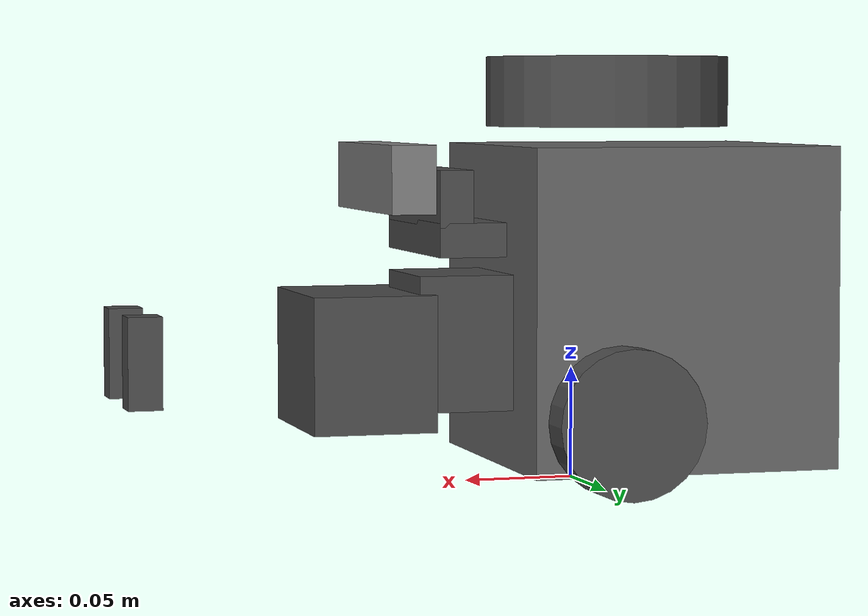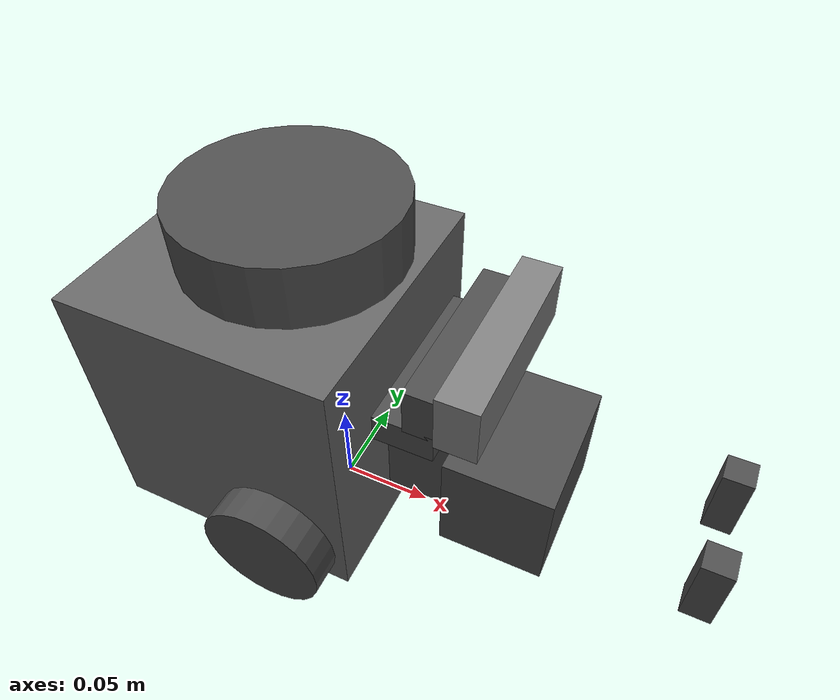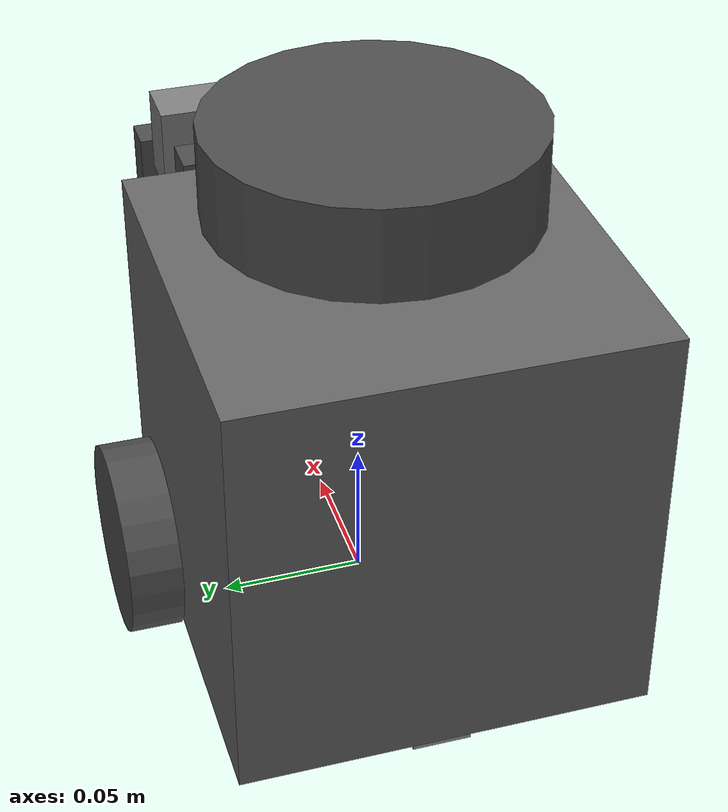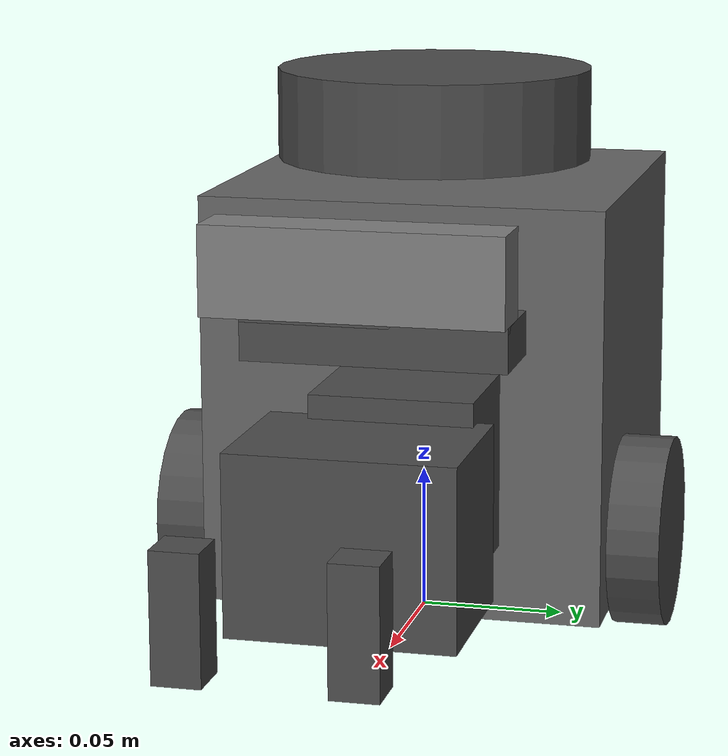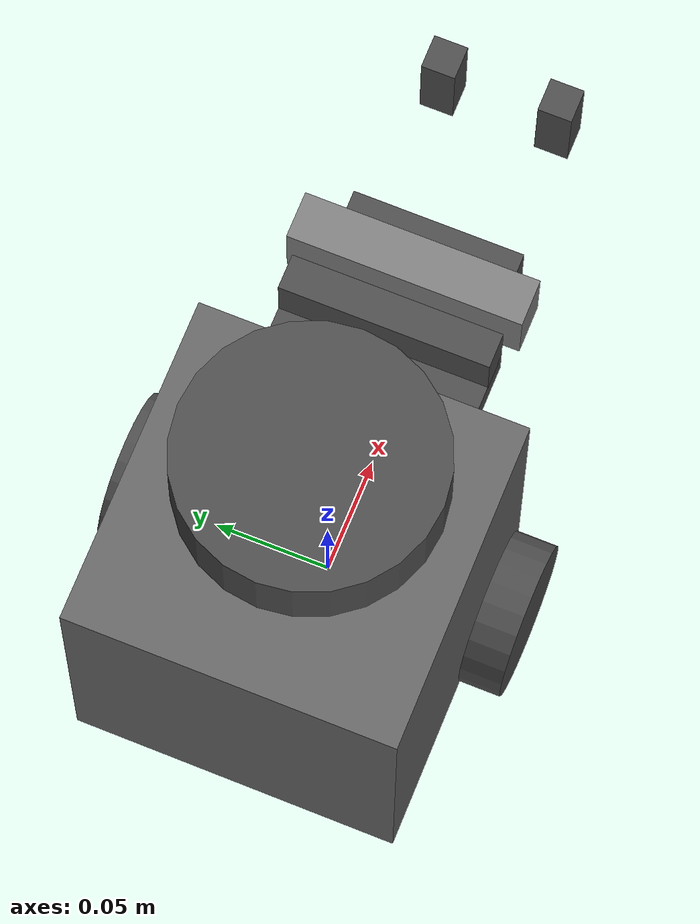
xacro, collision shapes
<?xml version="1.0"?>
<robot name="turtlebot3_burger_gripper" xmlns:xacro="http://www.ros.org/wiki/xacro">
  <xacro:arg name="controllers_file" default=""/>
  <!-- Init colour -->
  <material name="black">
    <color rgba="0.0 0.0 0.0 1.0"/>
  </material>
  <material name="dark">
    <color rgba="0.3 0.3 0.3 1.0"/>
  </material>
  <material name="light_black">
    <color rgba="0.4 0.4 0.4 1.0"/>
  </material>
  <material name="blue">
    <color rgba="0.0 0.0 0.8 1.0"/>
  </material>
  <material name="green">
    <color rgba="0.0 0.8 0.0 1.0"/>
  </material>
  <material name="grey">
    <color rgba="0.5 0.5 0.5 1.0"/>
  </material>
  <material name="orange">
    <color rgba="1.0 0.4235 0.0392 1.0"/>
  </material>
  <material name="brown">
    <color rgba="0.8706 0.8118 0.7647 1.0"/>
  </material>
  <material name="red">
    <color rgba="0.8 0.0 0.0 1.0"/>
  </material>
  <material name="white">
    <color rgba="1.0 1.0 1.0 1.0"/>
  </material>
  <link name="base_footprint"/>
  <joint name="base_joint" type="fixed">
    <parent link="base_footprint"/>
    <child link="base_link"/>
    <origin rpy="0 0 0" xyz="0.0 0.0 0.010"/>
  </joint>
  <link name="base_link">
    <visual>
      <origin rpy="0 0 0" xyz="-0.032 0 0.0"/>
      <geometry>
        <mesh filename="package://tb3_autonomy/meshes/bases/burger_base.stl" scale="0.001 0.001 0.001"/>
      </geometry>
      <material name="light_black"/>
    </visual>
    <collision>
      <origin rpy="0 0 0" xyz="-0.032 0 0.070"/>
      <geometry>
        <box size="0.140 0.140 0.143"/>
      </geometry>
    </collision>
    <inertial>
      <origin rpy="0 0 0" xyz="-0.033 0 0.07"/>
      <mass value="8.2573504e-01"/>
      <inertia ixx="2.2124416e-03" ixy="0.0" ixz="0.0" iyy="2.1193702e-03" iyz="0.0" izz="2.0064271e-03"/>
    </inertial>
  </link>
  <joint name="wheel_left_joint" type="continuous">
    <parent link="base_link"/>
    <child link="wheel_left_link"/>
    <origin rpy="-1.57 0 0" xyz="0.0 0.08 0.023"/>
    <axis xyz="0 0 1"/>
  </joint>
  <link name="wheel_left_link">
    <visual>
      <origin rpy="1.57 0 0" xyz="0 0 0"/>
      <geometry>
        <mesh filename="package://tb3_autonomy/meshes/wheels/left_tire.stl" scale="0.001 0.001 0.001"/>
      </geometry>
      <material name="dark"/>
    </visual>
    <collision>
      <origin rpy="0 0 0" xyz="0 0 0"/>
      <geometry>
        <cylinder length="0.018" radius="0.033"/>
      </geometry>
    </collision>
    <inertial>
      <origin xyz="0 0 0"/>
      <mass value="2.8498940e-02"/>
      <inertia ixx="1.1175580e-05" ixy="0.0" ixz="0.0" iyy="1.1192413e-05" iyz="0.0" izz="2.0712558e-05"/>
    </inertial>
  </link>
  <joint name="wheel_right_joint" type="continuous">
    <parent link="base_link"/>
    <child link="wheel_right_link"/>
    <origin rpy="-1.57 0 0" xyz="0.0 -0.080 0.023"/>
    <axis xyz="0 0 1"/>
  </joint>
  <link name="wheel_right_link">
    <visual>
      <origin rpy="1.57 0 0" xyz="0 0 0"/>
      <geometry>
        <mesh filename="package://tb3_autonomy/meshes/wheels/right_tire.stl" scale="0.001 0.001 0.001"/>
      </geometry>
      <material name="dark"/>
    </visual>
    <collision>
      <origin rpy="0 0 0" xyz="0 0 0"/>
      <geometry>
        <cylinder length="0.018" radius="0.033"/>
      </geometry>
    </collision>
    <inertial>
      <origin xyz="0 0 0"/>
      <mass value="2.8498940e-02"/>
      <inertia ixx="1.1175580e-05" ixy="0.0" ixz="0.0" iyy="1.1192413e-05" iyz="0.0" izz="2.0712558e-05"/>
    </inertial>
  </link>
  <joint name="caster_back_joint" type="fixed">
    <parent link="base_link"/>
    <child link="caster_back_link"/>
    <origin rpy="-1.57 0 0" xyz="-0.081 0 -0.004"/>
  </joint>
  <link name="caster_back_link">
    <collision>
      <origin rpy="0 0 0" xyz="0 0.001 0"/>
      <geometry>
        <box size="0.030 0.009 0.020"/>
      </geometry>
    </collision>
    <inertial>
      <origin xyz="0 0 0"/>
      <mass value="0.005"/>
      <inertia ixx="1.0e-07" ixy="0.0" ixz="0.0" iyy="1.0e-07" iyz="0.0" izz="1.0e-07"/>
    </inertial>
  </link>

  <joint name="support_cameras_a_joint" type="fixed">
    <parent link="base_link"/>
    <child link="support_cameras_a_link"/>
    <origin rpy="0 0 0" xyz="0.023 0 0.101"/>
  </joint>
  <link name="support_cameras_a_link">
    <visual>
      <origin rpy="0 0 1.57" xyz="0 0 0"/>
      <geometry>
        <mesh filename="package://tb3_autonomy/meshes/sensors/support_cameras_part_a.stl" scale="0.001 0.001 0.001"/>
      </geometry>
      <material name="dark"/>
    </visual>
    <collision>
      <origin rpy="0 0 1.57" xyz="0.036 0.0 0"/>
      <geometry>
        <box size="0.09 0.03 0.015"/>
      </geometry>
    </collision>
  </link>

  <joint name="support_cameras_b_joint" type="fixed">
    <parent link="support_cameras_a_link"/>
    <child link="support_cameras_b_link"/>
    <origin rpy="0 -1.57 0" xyz="0.0435 0 0"/>
  </joint>
  <link name="support_cameras_b_link">
    <visual>
      <origin rpy="0 0 -1.57" xyz="0 0 0"/>
      <geometry>
        <mesh filename="package://tb3_autonomy/meshes/sensors/support_cameras_part_b.stl" scale="0.001 0.001 0.001"/>
      </geometry>
      <material name="dark"/>
    </visual>
    <collision>
      <origin rpy="0 0 -1.57" xyz="0.018 0 0"/>
      <geometry>
        <box size="0.09 0.025 0.015"/>
      </geometry>
    </collision>
  </link>

  <joint name="imu_joint" type="fixed">
    <parent link="base_link"/>
    <child link="imu_link"/>
    <origin rpy="0 0 0" xyz="-0.032 0 0.068"/>
  </joint>
  <link name="imu_link"/>
  <joint name="scan_joint" type="fixed">
    <parent link="base_link"/>
    <child link="base_scan"/>
    <origin rpy="0 0 0" xyz="-0.032 0 0.172"/>
  </joint>
  <link name="base_scan">
    <visual>
      <origin rpy="0 0 0" xyz="0 0 0.0"/>
      <geometry>
        <mesh filename="package://tb3_autonomy/meshes/sensors/lds.stl" scale="0.001 0.001 0.001"/>
      </geometry>
      <material name="dark"/>
    </visual>
    <collision>
      <origin rpy="0 0 0" xyz="0.015 0 -0.0065"/>
      <geometry>
        <cylinder length="0.0315" radius="0.055"/>
      </geometry>
    </collision>
    <inertial>
      <mass value="0.114"/>
      <origin xyz="0 0 -0.01"/>
      <inertia ixx="47.43e-06" ixy="0.0" ixz="0.0" iyy="79.51e-06" iyz="0.0" izz="102.75e-06"/>
    </inertial>
  </link>

  <link name="base_gripper">
    <visual>
      <origin rpy="0 0 0" xyz="0 0 0.0"/>
      <geometry>
        <mesh filename="package://tb3_autonomy/meshes/actuators/gripper/gripper_base.stl" scale="0.001 0.001 0.001"/>
      </geometry>
      <material name="dark"/>
    </visual>
    <collision>
      <origin rpy="0 0 0" xyz="-0.005 0.03 -0.025"/>
      <geometry>
        <box size="0.055 0.055 0.06"/>
      </geometry>
    </collision>
    <inertial>
      <origin xyz="0.0 0.02 -0.02"/>
      <mass value="0.07390000"/>
      <inertia ixx="0.00003077518948" ixy="0.0" ixz="0.0" iyy="0.00004864265729" iyz="0.0" izz="0.00004639110157"/>
  </inertial>
  </link>
  <joint name="gripper_base_joint" type="fixed">
    <parent link="base_link"/>
    <child link="base_gripper"/>
    <origin rpy="0 0 -1.57" xyz="0.023 0.0025 0.08"/>
  </joint>

  <link name="tilt_gripper">
    <visual>
      <origin rpy="0 0 0" xyz="0 0 0.0"/>
      <geometry>
        <mesh filename="package://tb3_autonomy/meshes/actuators/gripper/gripper_tilt.stl" scale="0.001 0.001 0.001"/>
      </geometry>
      <material name="dark"/>
    </visual>
    <collision>
      <origin rpy="0 0 0" xyz="0.045 0 0"/>
      <geometry>
        <box size="0.055 0.075 0.06"/>
      </geometry>
    </collision>
    <inertial>
        <origin xyz="0.025 0 0"/>
        <mass value="0.06000000"/>
        <inertia ixx="23.15e-06" ixy="0.0" ixz="0.0" iyy="32.9e-06" iyz="0.0" izz="42.567e-06"/>
    </inertial>
  </link>
  <joint name="gripper_tilt_joint" type="revolute">
      <axis xyz="0 1 0"/>
      <limit effort="1000.0" lower="-0.3" upper="0" velocity="0.5"/>
      <origin rpy="0 0 1.57" xyz="-0.0005 0.0335 -0.033"/>
      <parent link="base_gripper"/>
      <child link="tilt_gripper"/>
  </joint>

  <link name="left_gripper">
    <visual>
      <origin rpy="0 0 0" xyz="0 0 0.0"/>
      <geometry>
        <mesh filename="package://tb3_autonomy/meshes/actuators/gripper/gripper_left.stl" scale="0.001 0.001 0.001"/>
      </geometry>
      <material name="dark"/>
    </visual>

    <collision>
      <origin rpy="0 0 0" xyz="0.095 0.01 -0.015"/>
      <geometry>
        <box size="0.015 0.015 0.04"/> </geometry>
      <surface>
        <friction>
          <ode>
            <mu>1000.0</mu>
            <mu2>1000.0</mu2>
          </ode>
        </friction>
        <contact>
          <ode>
            <kp>1000000.0</kp>
            <kd>1.0</kd>
            <min_depth>0.001</min_depth>
          </ode>
        </contact>
      </surface>
    </collision>

    <inertial>
      <origin xyz="0.045 0 -0.021"/>
      <mass value="0.01"/> <inertia ixx="0.000001" ixy="0.0" ixz="0.0" iyy="0.000001" iyz="0.0" izz="0.000001"/>
    </inertial>
  </link>
  <joint name="gripper_left_joint" type="revolute">
      <axis xyz="0 0 1"/>
      <limit effort="1000.0" lower="0" upper="1.0" velocity="0.5"/>
      <origin rpy="0 0 0" xyz="0.05 0.016 0.018"/>
      <parent link="tilt_gripper"/>
      <child link="left_gripper"/>
  </joint>

  <link name="right_gripper">
    <visual>
      <origin rpy="0 0 0" xyz="0 0 0.0"/>
      <geometry>
        <mesh filename="package://tb3_autonomy/meshes/actuators/gripper/gripper_right.stl" scale="0.001 0.001 0.001"/>
      </geometry>
      <material name="dark"/>
    </visual>

    <collision>
      <origin rpy="0 0 0" xyz="0.095 -0.01 -0.015"/>
      <geometry>
        <box size="0.015 0.015 0.04"/>
      </geometry>
      <surface>
        <friction>
          <ode>
            <mu>1000.0</mu>
            <mu2>1000.0</mu2>
          </ode>
        </friction>
        <contact>
          <ode>
            <kp>1000000.0</kp>
            <kd>1.0</kd>
            <min_depth>0.001</min_depth>
          </ode>
        </contact>
      </surface>
    </collision>

    <inertial>
      <origin xyz="0.045 0.0 -0.021"/>
      <mass value="0.01"/>
      <inertia ixx="0.000001" ixy="0.0" ixz="0.0" iyy="0.000001" iyz="0.0" izz="0.000001"/>
    </inertial>
  </link>
  <joint name="gripper_right_joint" type="revolute">
      <axis xyz="0 0 1"/>
      <limit effort="1000.0" lower="-1.0" upper="0" velocity="0.5"/>
      <origin rpy="0 0 0" xyz="0.05 -0.016 0.018"/>
      <parent link="tilt_gripper"/>
      <child link="right_gripper"/>
  </joint>

  <link name="oak_d_pro_camera">
    <visual name="meshes">
      <origin xyz="0.0 0.0 0.0" rpy="0 0 0"/>
      <geometry>
          <mesh filename="package://tb3_autonomy/meshes/sensors/OAK-D-PRO.dae" scale="1.0 1.0 1.0"/>
      </geometry>
      <material name="grey"/>
    </visual>
    <inertial>
    <origin xyz="0.0 0.0 0.0"/>
    <mass value="0.09100000"/>
    <inertia ixx="0.00000975" ixy="0.0" ixz="0.0" iyy="0.00007087" iyz="0.0" izz="0.00007312"/>
    </inertial>
    <collision>
      <origin rpy="0.0 0.0 0.0" xyz="0 -0.005 -0.01"/>
      <geometry>
        <box size="0.1 0.03 0.02"/>
      </geometry>
    </collision>
  </link>
  <joint name="joint_oak_d_pro_camera" type="fixed">
    <parent link="support_cameras_b_link"/>
    <child link="oak_d_pro_camera"/>
    <origin xyz="0.0315 -0.0015 -0.03" rpy="3.14 0 1.57"/>
  </joint>

  <link name="oak_d_pro_color_optical_frame"/>
  <joint name="joint_oak_d_pro_color_optical_frame" type="fixed">
    <parent link="oak_d_pro_camera"/>
    <child link="oak_d_pro_color_optical_frame"/>
    <origin xyz="0 0 0" rpy="-1.5708 0 -1.5708"/>
  </joint>

  <link name="oak_d_pro_depth_optical_frame"/>
  <joint name="joint_oak_d_pro_depth_optical_frame" type="fixed">
    <parent link="oak_d_pro_camera"/>
    <child link="oak_d_pro_depth_optical_frame"/>
    <origin xyz="0.0 0.0 0.0" rpy="-1.57 -1.57 0"/>
  </joint>

  <link name="counterweight">
    <inertial>
      <mass value="0.3"/>
      <inertia
        ixx="0.0005" ixy="0.0" ixz="0.0"
        iyy="0.0005" iyz="0.0"
        izz="0.0005"/>
    </inertial>
  </link>
  <joint name="joint_counterweight" type="fixed">
    <parent link="base_link"/>
    <child link="counterweight"/>
    <origin xyz="-0.12 0.0 0.0" rpy="0 0 0"/>
  </joint>
  <link name="oak_d_pro_camera_gz"/>
  <joint name="joint_oak_d_pro_camera_gz" type="fixed">
    <parent link="oak_d_pro_camera"/>
    <child link="oak_d_pro_camera_gz"/>
    <origin xyz="0 0 0" rpy="0 -1.57 -1.5708"/>
  </joint>

  <gazebo reference="imu_link">
    <sensor name="tb3_imu" type="imu">
      <always_on>true</always_on>
      <update_rate>200</update_rate>

      <!-- Ton modèle de bruit SDF (OK pour Gazebo Classic) -->
      <imu>
        <angular_velocity>
          <x><noise type="gaussian"><mean>0.0</mean><stddev>2e-4</stddev></noise></x>
          <y><noise type="gaussian"><mean>0.0</mean><stddev>2e-4</stddev></noise></y>
          <z><noise type="gaussian"><mean>0.0</mean><stddev>2e-4</stddev></noise></z>
        </angular_velocity>
        <linear_acceleration>
          <x><noise type="gaussian"><mean>0.0</mean><stddev>1.7e-2</stddev></noise></x>
          <y><noise type="gaussian"><mean>0.0</mean><stddev>1.7e-2</stddev></noise></y>
          <z><noise type="gaussian"><mean>0.0</mean><stddev>1.7e-2</stddev></noise></z>
        </linear_acceleration>
      </imu>

      <plugin name="tb3_imu_ros" filename="libgazebo_ros_imu_sensor.so">
        <ros>
          <namespace>/</namespace>
          <!-- le plugin publie par défaut sur ~/out -->
          <remapping>~/out:=imu</remapping>
        </ros>
      </plugin>
    </sensor>
  </gazebo>

  <gazebo reference="base_scan">
      <sensor name="hls_lfcd_lds" type="ray">
        <always_on>true</always_on>
        <visualize>false</visualize> <pose>0 0 0.01 0 0 0</pose> <update_rate>5</update_rate>
        <ray>
          <scan>
            <horizontal>
              <samples>360</samples>
              <resolution>1</resolution>
              <min_angle>0.0</min_angle>
              <max_angle>6.28</max_angle>
            </horizontal>
          </scan>
          <range>
            <min>0.12</min>
            <max>3.5</max>
            <resolution>0.015</resolution>
          </range>
          <noise type="gaussian">
            <mean>0.0</mean>
            <stddev>0.01</stddev>
          </noise>
        </ray>
        <plugin name="tb3_laser_ros" filename="libgazebo_ros_ray_sensor.so">
          <ros>
            <namespace>/</namespace>
            <remapping>~/out:=scan</remapping>
          </ros>
          <output_type>sensor_msgs/LaserScan</output_type>
          <frame_name>base_scan</frame_name>
        </plugin>
      </sensor>
    </gazebo>

  <gazebo reference="oak_d_pro_camera_gz">

    <sensor name="rgb_camera" type="camera">
          <pose>0 0 0 0 0 0</pose>

      <always_on>true</always_on>
      <update_rate>30</update_rate>
      <visualize>false</visualize>

      <camera>
        <horizontal_fov>1.047</horizontal_fov>
        <image>
          <width>640</width>
          <height>480</height>
          <format>R8G8B8</format>
        </image>
        <clip>
          <near>0.1</near>
          <far>100</far>
        </clip>
      </camera>

      <plugin name="rgb_camera_ros" filename="libgazebo_ros_camera.so">

        <ros>
          <namespace>/</namespace>
          <remapping>image_raw:=image</remapping>
          <remapping>camera_info:=camera_info</remapping>
        </ros>
        <camera_name>rgb_camera</camera_name>
            <frame_name>oak_d_pro_color_optical_frame</frame_name>
      </plugin>
    </sensor>
  </gazebo>

  <gazebo reference="oak_d_pro_depth_optical_frame">
    <sensor name="depth_camera" type="depth">
          <pose>0 0 0 0 0 0</pose>

      <always_on>true</always_on>
      <update_rate>30</update_rate>
      <visualize>false</visualize>

      <camera>
        <horizontal_fov>1.047</horizontal_fov>
        <image>
          <width>640</width>
          <height>480</height>
          <!-- tu peux laisser ça pour la partie "image", la profondeur sortira quand même en depth -->
          <format>R8G8B8</format>
        </image>
        <clip>
          <near>0.1</near>
          <far>100</far>
        </clip>
      </camera>

      <plugin name="depth_camera_ros" filename="libgazebo_ros_camera.so">
        <ros>
          <namespace>/</namespace>
          <remapping>image_raw:=image</remapping>
          <remapping>camera_info:=camera_info</remapping>
        </ros>
        <camera_name>depth_camera</camera_name>
        <frame_name>oak_d_pro_depth_optical_frame</frame_name>
      </plugin>
    </sensor>
  </gazebo>

  <gazebo>
    <plugin name="tb3_diff_drive" filename="libgazebo_ros_diff_drive.so">
      <ros>
        <namespace>/</namespace>
      </ros>

      <update_rate>30</update_rate>

      <left_joint>wheel_left_joint</left_joint>
      <right_joint>wheel_right_joint</right_joint>

      <wheel_separation>0.160</wheel_separation>
      <!-- plugin attend wheel_diameter (pas wheel_radius) -->
      <wheel_diameter>0.066</wheel_diameter>

      <max_wheel_torque>20</max_wheel_torque>
      <max_wheel_acceleration>1.0</max_wheel_acceleration>

      <command_topic>cmd_vel</command_topic>

      <publish_odom>true</publish_odom>
      <publish_odom_tf>true</publish_odom_tf>
      <publish_wheel_tf>false</publish_wheel_tf>

      <odometry_topic>odom</odometry_topic>
      <odometry_frame>odom</odometry_frame>
      <robot_base_frame>base_footprint</robot_base_frame>
    </plugin>
  </gazebo>

  <ros2_control name="GazeboSystem" type="system">
      <hardware>
        <plugin>gazebo_ros2_control/GazeboSystem</plugin>
      </hardware>

      <joint name="gripper_left_joint">
        <command_interface name="position"/>
        <state_interface name="position"/>
        <state_interface name="velocity"/>
      </joint>

      <joint name="gripper_right_joint">
        <command_interface name="position"/>
        <state_interface name="position"/>
        <state_interface name="velocity"/>
      </joint>

      <joint name="wheel_left_joint">
        <state_interface name="position"/>
        <state_interface name="velocity"/>
      </joint>

      <joint name="wheel_right_joint">
        <state_interface name="position"/>
        <state_interface name="velocity"/>
      </joint>
    </ros2_control>

  <gazebo>
    <plugin name="gazebo_ros2_control" filename="libgazebo_ros2_control.so">
      <parameters>$(arg controllers_file)</parameters>
    </plugin>
  </gazebo>
  <gazebo reference="caster_back_link">
    <mu1>0.0</mu1>
    <mu2>0.0</mu2>

    <kp>1000000.0</kp>
    <kd>100.0</kd>
    <minDepth>0.001</minDepth>
    <maxVel>1.0</maxVel>

    <material>Gazebo/Grey</material>
  </gazebo>

</robot>
